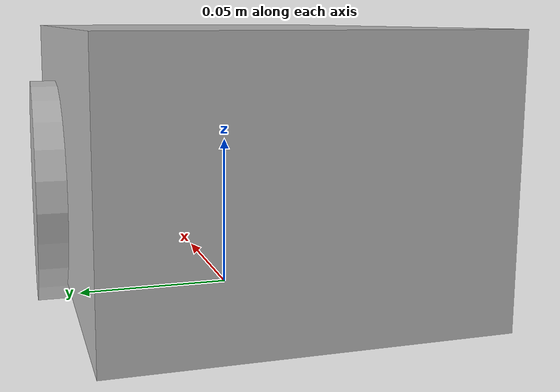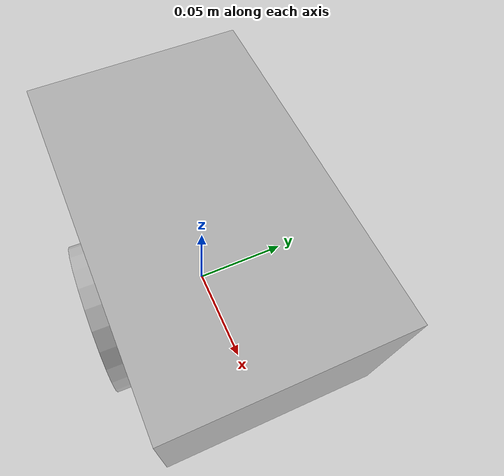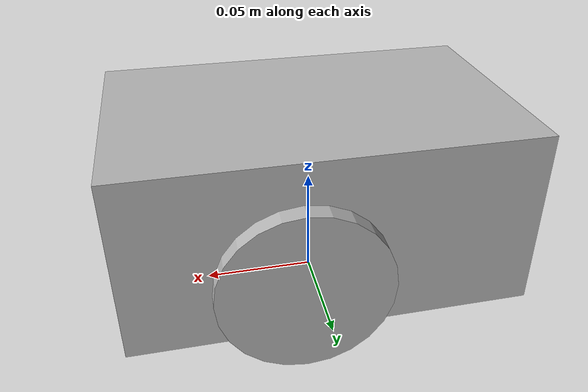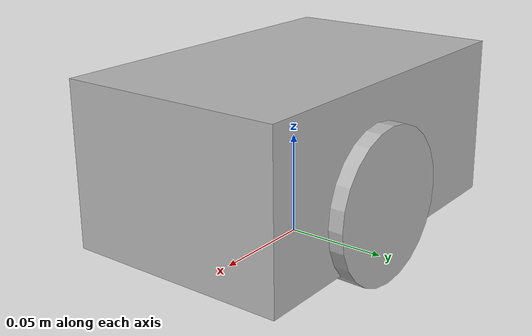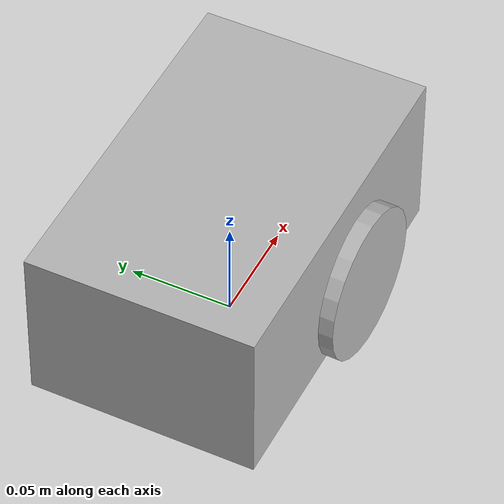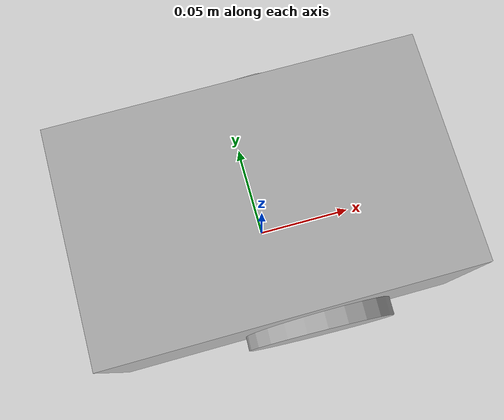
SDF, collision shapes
<?xml version='1.0'?>

<!--
  From:
      http://www.theconstructsim.com/how-to-build-a-differential-drive-simulation/
-->

<sdf version='1.6'>
  <model name="my_robot">
  	<!--If static=true, will be ignored by the physics engine so I can place the components
     properly-->
  	<static>false</static>

  	<link name='chassis'>
  		<pose>0 0 0.048 0 0 0</pose>

      <inertial>
        <!-- mass= 500gr -->
        <mass>0.5</mass>
        <pose>0 0 0 0 0 0</pose>
        <inertia>
          <ixx>0.00077</ixx>
          <iyy>0.00154</iyy>
          <izz>0.00178</izz>
        </inertia>
      </inertial>

      <gravity>1</gravity>
      <self_collide>0</self_collide>
      <kinematic>1</kinematic>

  		<collision name='collision'>
  			<geometry>
  				<box>
  					<size>0.175 0.11 0.08</size>
  				</box>
  			</geometry>
  		</collision>

  		<visual name='visual'>
        <pose frame=''>0 0 0 0 0 0</pose>
  			<geometry>
	          <mesh>
	            <uri>file://$(find my_robot_description)/meshes/chassis_resized.dae</uri>
	          </mesh>
  			</geometry>
  		</visual>

  	</link>

<!-- END OF CHASSIS LINK DEFINITION -->

    <link name="left_wheel">
      <pose>0.013815 0.050215 0.033062 0 0 -0.02816</pose>

      <inertial>
        <mass>0.01</mass>
        <inertia>
          <ixx>0.166667</ixx>
          <iyy>0.166667</iyy>
          <izz>0.166667</izz>
        </inertia>
        <pose frame=''>0 0 0 0 -0 0</pose>
      </inertial>

      <gravity>1</gravity>
      <self_collide>0</self_collide>
      <kinematic>1</kinematic>

      <collision name="collision">
      	<pose frame=''>0 0 0 1.57 0 0</pose>
        <geometry>
        	<cylinder>
	            <radius>0.037</radius>
	            <length>0.026</length>
        	</cylinder>
        </geometry>
      </collision>

      <visual name="visual">
        <geometry>
          <mesh>
            <uri>file://$(find my_robot_description)/meshes/left_wheel_resized.stl</uri>
          </mesh>
        </geometry>
      </visual>

    </link>

    <link name="right_wheel">
      <pose>0.013815 -0.050215 0.033062 0 0 -0.02816</pose>

      <inertial>
        <mass>0.01</mass>
        <inertia>
          <ixx>0.166667</ixx>
          <iyy>0.166667</iyy>
          <izz>0.166667</izz>
        </inertia>
        <pose frame=''>0 0 0 0 -0 0</pose>
      </inertial>

      <gravity>1</gravity>
      <self_collide>0</self_collide>
      <kinematic>1</kinematic>

      <collision name="collision">
        <pose frame=''>0 0 0 1.57 0 0</pose>
        <geometry>
          <cylinder>
            <radius>0.037</radius>
            <length>0.026</length>
          </cylinder>
        </geometry>
      </collision>

      <visual name="visual">
        <geometry>
          <mesh>
            <uri>file://$(find my_robot_description)/meshes/right_wheel_resized.stl</uri>
          </mesh>
        </geometry>
      </visual>

    </link>

    <joint type="revolute" name="left_wheel_hinge">
      <pose>0 0 0 0 0 0</pose>
      <child>left_wheel</child>
      <parent>chassis</parent>
      <axis>
        <xyz>0 1 0</xyz>
      </axis>
    </joint>

    <joint type="revolute" name="right_wheel_hinge">
      <pose>0 0 0 0 0 0</pose>
      <child>right_wheel</child>
      <parent>chassis</parent>
      <axis>
        <xyz>0 1 0</xyz>
      </axis>
    </joint>

    <plugin name="differential_drive_controller" filename="libgazebo_ros_diff_drive.so">
      <alwaysOn>true</alwaysOn>
      <updateRate>20</updateRate>
      <leftJoint>left_wheel_hinge</leftJoint>
      <rightJoint>right_wheel_hinge</rightJoint>
      <wheelSeparation>0.1415</wheelSeparation>
      <wheelDiameter>0.062</wheelDiameter>
      <torque>1</torque>
      <commandTopic>cmd_vel</commandTopic>
      <odometryTopic>odom</odometryTopic>
      <odometryFrame>odom</odometryFrame>
      <robotBaseFrame>base_footprint</robotBaseFrame>

      <legacyMode>false</legacyMode>
      <rosDebugLevel>na</rosDebugLevel>
      <publishWheelTF>true</publishWheelTF>
      <publishWheelJointState>true</publishWheelJointState>
      <wheelAcceleration>0</wheelAcceleration>
      <!-- 800 gm*cm = 0.008 kg*m -->
      <wheelTorque>0.008</wheelTorque>
      <odometrySource>1</odometrySource>
      <publishTf>1</publishTf>
      <robotNamespace>/</robotNamespace>
    </plugin>

  </model>
</sdf>
